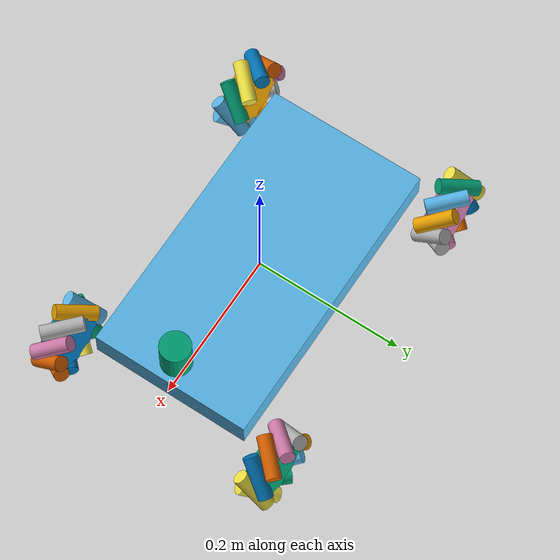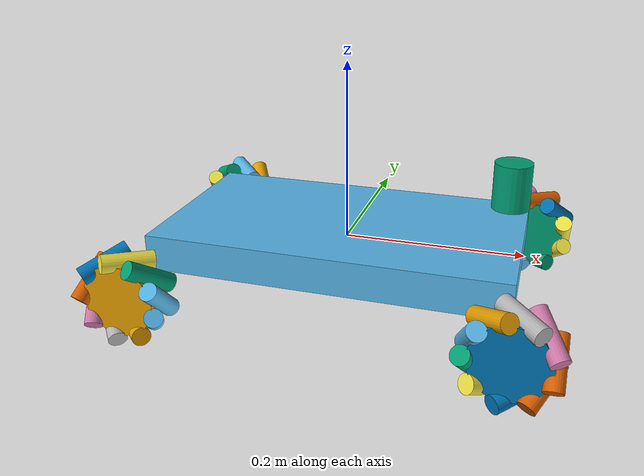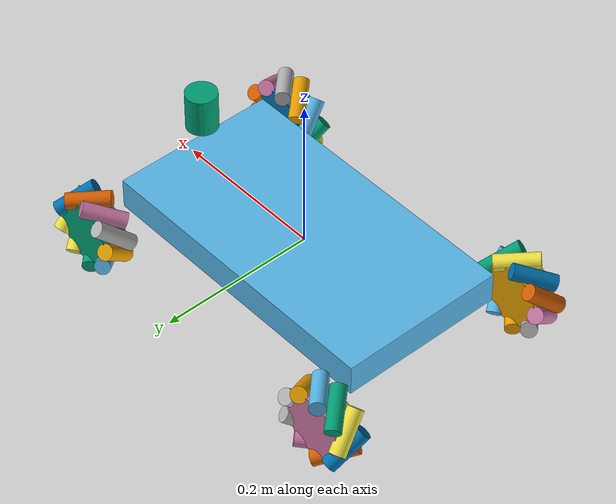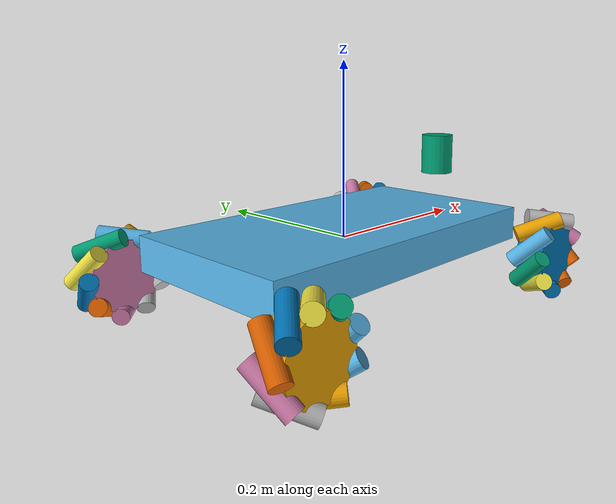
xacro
<?xml version="1.0"?>
<robot xmlns:xacro="http://www.ros.org/wiki/xacro" name="mecanum_bot">
  <xacro:arg name="controllers_yaml" default=""/>
  <xacro:arg name="ros2_control_params" default=""/>

  <xacro:property name="PI" value="3.1415926535897931"/>

  <!-- Dimensions -->
  <xacro:property name="wheel_r" value="0.05"/>
  <xacro:property name="wheel_w" value="0.055"/>
  <xacro:property name="roller_r" value="0.01"/>
  <xacro:property name="roller_w" value="${wheel_w}"/>
  <xacro:property name="roller_angle" value="${PI/4}"/>
  <xacro:property name="roller_phase" value="0"/>
  <xacro:property name="roller_center_r" value="${wheel_r - roller_r}"/>
  <xacro:property name="hub_r" value="${wheel_r - roller_r}"/>
  <xacro:property name="hub_w" value="${wheel_w * 0.6}"/>
  <xacro:property name="roller_mu1" value="0.5"/>
  <xacro:property name="roller_mu2" value="0.5"/>
  <xacro:property name="roller_kp" value="5e4"/>
  <xacro:property name="roller_kd" value="5e1"/>
  <xacro:property name="roller_joint_damping" value="0.02"/>
  <xacro:property name="roller_joint_friction" value="0.005"/>
  <xacro:property name="body_x" value="0.395"/>
  <xacro:property name="body_y" value="0.215"/>
  <xacro:property name="body_z" value="0.04"/>

  <!-- Frames: base_footprint at ground, base_link is body center -->
  <link name="base_footprint"/>

  <link name="base_link">
    <inertial>
      <origin xyz="0 0 0" rpy="0 0 0"/>
      <mass value="8.0"/>
      <inertia ixx="0.10" ixy="0.0" ixz="0.0" iyy="0.10" iyz="0.0" izz="0.10"/>
    </inertial>

    <visual>
      <origin xyz="0 0 0" rpy="0 0 0"/>
      <geometry>
        <box size="${body_x} ${body_y} ${body_z}"/>
      </geometry>
    </visual>

    <collision>
      <origin xyz="0 0 0" rpy="0 0 0"/>
      <geometry>
        <box size="${body_x} ${body_y} ${body_z}"/>
      </geometry>
    </collision>
  </link>

  <!-- base_link centered at (wheel_r + body_z/2) above ground -->
  <joint name="base_joint" type="fixed">
    <parent link="base_link"/>
    <child link="base_footprint"/>
    <origin xyz="0 0 ${-(2*wheel_r - body_z/2)}" rpy="0 0 0"/>
  </joint>

  <!-- Mecanum roller macro -->
  <xacro:macro name="roller" params="parent idx angle sign">
    <xacro:property name="roller_theta" value="${angle + roller_phase}"/>
    <xacro:property name="roller_cx" value="${roller_center_r * cos(roller_theta)}"/>
    <xacro:property name="roller_cz" value="${roller_center_r * sin(roller_theta)}"/>
    <xacro:property name="roller_vx" value="${-sin(roller_theta) * cos(roller_angle)}"/>
    <xacro:property name="roller_vy" value="${sign * sin(roller_angle)}"/>
    <xacro:property name="roller_vz" value="${cos(roller_theta) * cos(roller_angle)}"/>
    <xacro:property name="roller_yaw" value="${atan2(roller_vy, roller_vx)}"/>
    <xacro:property name="roller_pitch" value="${atan2(sqrt(roller_vx*roller_vx + roller_vy*roller_vy), roller_vz)}"/>

    <link name="${parent}_roller_${idx}_link">
      <inertial>
        <origin xyz="0 0 0" rpy="0 0 0"/>
        <mass value="0.02"/>
        <inertia ixx="0.000014" ixy="0.0" ixz="0.0" iyy="0.000014" iyz="0.0" izz="0.0000025"/>
      </inertial>

      <visual>
        <origin xyz="0 0 0" rpy="0 0 0"/>
        <geometry>
          <cylinder radius="${roller_r}" length="${roller_w}"/>
        </geometry>
      </visual>

      <collision>
        <origin xyz="0 0 0" rpy="0 0 0"/>
        <geometry>
          <cylinder radius="${roller_r}" length="${roller_w}"/>
        </geometry>
      </collision>
    </link>

    <joint name="${parent}_roller_${idx}_joint" type="continuous">
      <parent link="${parent}_link"/>
      <child link="${parent}_roller_${idx}_link"/>
      <origin xyz="${roller_cx} 0 ${roller_cz}" rpy="0 ${roller_pitch} ${roller_yaw}"/>
      <axis xyz="0 0 1"/>
      <dynamics damping="${roller_joint_damping}" friction="${roller_joint_friction}"/>
    </joint>

    <gazebo reference="${parent}_roller_${idx}_link">
      <mu1>${roller_mu1}</mu1>
      <mu2>${roller_mu2}</mu2>
      <kp>${roller_kp}</kp>
      <kd>${roller_kd}</kd>
    </gazebo>
  </xacro:macro>

  <!-- Mecanum wheel macro -->
  <xacro:macro name="wheel" params="name x y roller_sign">
    <link name="${name}_link">
      <inertial>
        <origin xyz="0 0 0" rpy="0 0 0"/>
        <mass value="10.14"/>
        <inertia ixx="0.00007" ixy="0.0" ixz="0.0" iyy="0.00007" iyz="0.0" izz="0.00011"/>
      </inertial>

      <!-- Hub cylinder axis is Z in URDF, rotate to align with joint axis (Y) -->
      <visual>
        <origin xyz="0 0 0" rpy="${PI/2} 0 0"/>
        <geometry>
          <cylinder radius="${hub_r}" length="${hub_w}"/>
        </geometry>
      </visual>

      <collision>
        <origin xyz="0 0 0" rpy="${PI/2} 0 0"/>
        <geometry>
          <cylinder radius="${hub_r}" length="${hub_w}"/>
        </geometry>
      </collision>
    </link>

    <!-- Wheel centers are at wheel_r above ground, base_link is at wheel_r+body_z/2, so z = -(body_z/2) -->
    <joint name="${name}_joint" type="continuous">
      <parent link="base_link"/>
      <child link="${name}_link"/>
      <origin xyz="${x} ${y} ${body_z/2 - wheel_r}" rpy="0 0 0"/>
      <axis xyz="0 1 0"/>
      <limit effort="200.0" velocity="100.0"/>
      <dynamics damping="0.1" friction="0.0"/>
    </joint>

    <xacro:roller parent="${name}" idx="0" angle="0" sign="${roller_sign}"/>
    <xacro:roller parent="${name}" idx="1" angle="${2*PI/9}" sign="${roller_sign}"/>
    <xacro:roller parent="${name}" idx="2" angle="${4*PI/9}" sign="${roller_sign}"/>
    <xacro:roller parent="${name}" idx="3" angle="${6*PI/9}" sign="${roller_sign}"/>
    <xacro:roller parent="${name}" idx="4" angle="${8*PI/9}" sign="${roller_sign}"/>
    <xacro:roller parent="${name}" idx="5" angle="${10*PI/9}" sign="${roller_sign}"/>
    <xacro:roller parent="${name}" idx="6" angle="${12*PI/9}" sign="${roller_sign}"/>
    <xacro:roller parent="${name}" idx="7" angle="${14*PI/9}" sign="${roller_sign}"/>
    <xacro:roller parent="${name}" idx="8" angle="${16*PI/9}" sign="${roller_sign}"/>
  </xacro:macro>

  <!-- Wheels (x=0.20, y=0.15) -->
  <xacro:wheel name="front_left_wheel"  x="0.20"  y="0.15" roller_sign="-1"/>
  <xacro:wheel name="front_right_wheel" x="0.20"  y="-0.15" roller_sign="1"/>
  <xacro:wheel name="rear_left_wheel"   x="-0.20" y="0.15" roller_sign="1"/>
  <xacro:wheel name="rear_right_wheel"  x="-0.20" y="-0.15" roller_sign="-1"/>

  <!-- Lidar -->
  <link name="lidar_link">
    <inertial>
      <origin xyz="0 0 0" rpy="0 0 0"/>
      <mass value="0.1"/>
      <inertia ixx="0.00003083" ixy="0.0" ixz="0.0" iyy="0.00003083" iyz="0.0" izz="0.00002"/>
    </inertial>
    <visual>
      <origin xyz="0 0 0" rpy="0 0 0"/>
      <geometry>
        <cylinder radius="0.02" length="0.05"/>
      </geometry>
    </visual>
  </link>

  <joint name="lidar_joint" type="fixed">
    <parent link="base_link"/>
    <child link="lidar_link"/>
    <origin xyz="0.18 0 0.08" rpy="0 0 0"/>
  </joint>

  <!-- Keep lidar_link from being merged -->
  <gazebo reference="lidar_joint">
    <preserveFixedJoint>true</preserveFixedJoint>
  </gazebo>

  <!-- Gazebo GPU lidar sensor -->
  <gazebo reference="lidar_link">
    <sensor name="gpu_lidar" type="gpu_lidar">
      <topic>scan</topic>
      <update_rate>10</update_rate>
      <ray>
        <scan>
          <horizontal>
            <samples>360</samples>
            <resolution>1</resolution>
            <min_angle>-3.141593</min_angle>
            <max_angle>3.141593</max_angle>
          </horizontal>
        </scan>
        <range>
          <min>0.12</min>
          <max>12.0</max>
          <resolution>0.01</resolution>
        </range>
      </ray>
    </sensor>
  </gazebo>

  <!-- ros2_control for Gazebo Sim -->
  <ros2_control name="GazeboSimSystem" type="system">
    <hardware>
      <plugin>gz_ros2_control/GazeboSimSystem</plugin>
    </hardware>

    <joint name="front_left_wheel_joint">
      <command_interface name="velocity"/>
      <state_interface name="position"/>
      <state_interface name="velocity"/>
    </joint>
    <joint name="front_right_wheel_joint">
      <command_interface name="velocity"/>
      <state_interface name="position"/>
      <state_interface name="velocity"/>
    </joint>
    <joint name="rear_left_wheel_joint">
      <command_interface name="velocity"/>
      <state_interface name="position"/>
      <state_interface name="velocity"/>
    </joint>
    <joint name="rear_right_wheel_joint">
      <command_interface name="velocity"/>
      <state_interface name="position"/>
      <state_interface name="velocity"/>
    </joint>
  </ros2_control>

  <!-- gz_ros2_control plugin: reads robot_description from robot_state_publisher and loads controllers.yaml -->
  <gazebo>
    <plugin filename="ign_ros2_control-system" name="ign_ros2_control::IgnitionROS2ControlPlugin">
      <robot_param>robot_description</robot_param>
      <robot_param_node>robot_state_publisher</robot_param_node>
      <parameters>$(arg ros2_control_params)</parameters>
    </plugin>
  </gazebo>

  <!-- Gazebo ground-truth pose publisher -->
  <gazebo>
    <plugin filename="ignition-gazebo-pose-publisher-system" name="ignition::gazebo::systems::PosePublisher">
      <publish_model_pose>true</publish_model_pose>
      <publish_link_pose>false</publish_link_pose>
      <publish_collision_pose>false</publish_collision_pose>
      <publish_visual_pose>false</publish_visual_pose>
      <publish_nested_model_pose>false</publish_nested_model_pose>
      <use_pose_vector_msg>true</use_pose_vector_msg>
    </plugin>
  </gazebo>

  <!-- Gazebo ground-truth odometry publisher -->
  <gazebo>
    <plugin filename="ignition-gazebo-odometry-publisher-system" name="ignition::gazebo::systems::OdometryPublisher">
      <dimensions>3</dimensions>
      <odom_topic>/model/mecanum_bot/odometry</odom_topic>
      <odom_frame>odom</odom_frame>
      <base_frame>base_link</base_frame>
      <publish_tf>false</publish_tf>
    </plugin>
  </gazebo>
</robot>
